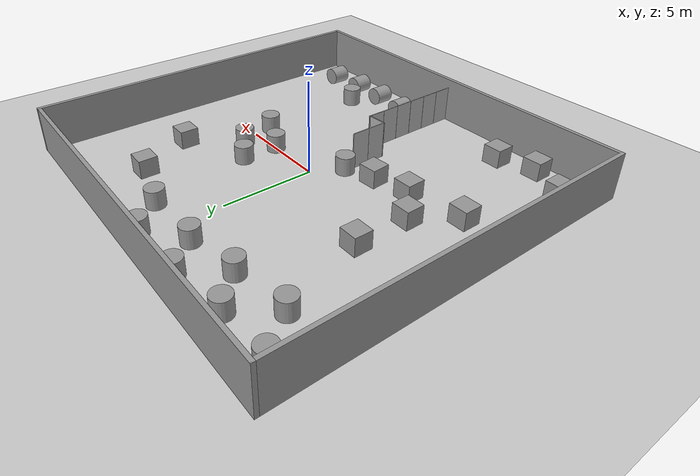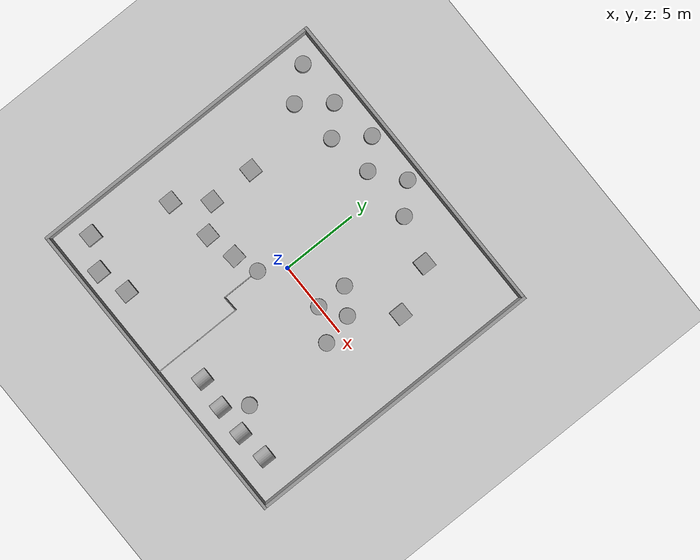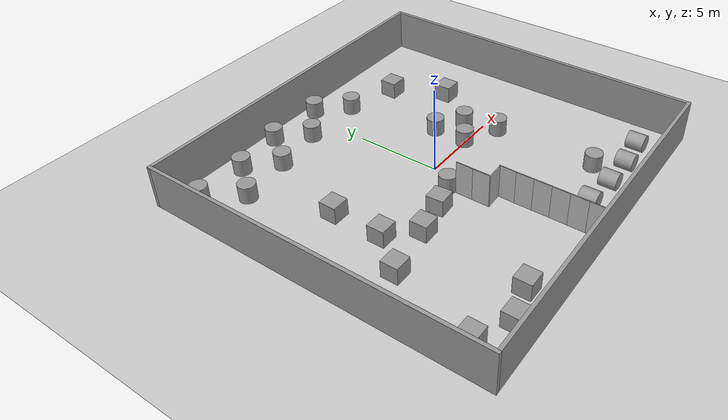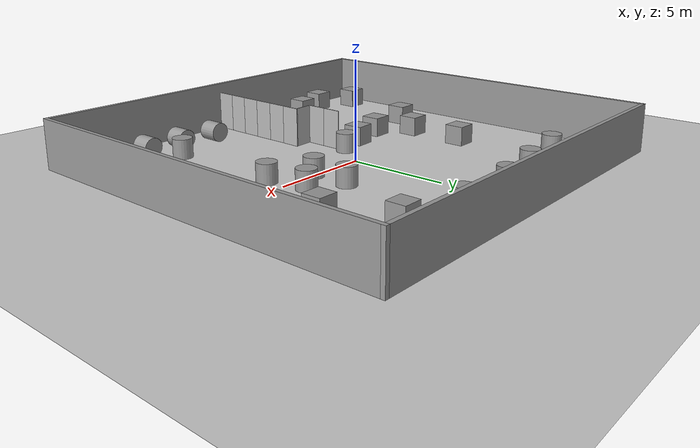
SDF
<sdf version="1.4">
 <world name="default">
  <model name="ground_plane">
   <static>1</static>
   <link name="link">
    <collision name="collision">
     <geometry><plane><normal>0 0 1</normal><size>100 100</size></plane></geometry>
     <surface><friction><ode><mu>100</mu><mu2>50</mu2></ode></friction></surface>
    </collision>
    <visual name="visual">
     <cast_shadows>0</cast_shadows>
     <geometry><plane><normal>0 0 1</normal><size>100 100</size></plane></geometry>
     <material>
      <script><uri>file://media/materials/scripts/gazebo.material</uri><name>Gazebo/Grey</name></script>
     </material>
    </visual>
    <velocity_decay><linear>0</linear><angular>0</angular></velocity_decay>
   </link>
  </model>
  <light name="sun" type="directional">
   <pose>0 0 10 0 -0 0</pose>
   <diffuse>0.8 0.8 0.8 1</diffuse>
   <specular>0.2 0.2 0.2 1</specular>
   <attenuation>
    <range>1000</range>
    <constant>0.9</constant>
    <linear>0.01</linear>
    <quadratic>0.001</quadratic>
   </attenuation>
   <direction>-0.5 0.1 -0.9</direction>
  </light>
  <model name="BuildingDefaultName3">
   <link name="Wall_12">
    <collision name="Wall_12_Collision">
     <geometry><box><size>20.7566 0.2 2.5</size></box></geometry>
     <pose>0 0 1.25 0 -0 0</pose>
    </collision>
    <visual name="Wall_12_Visual">
     <pose>0 0 1.25 0 -0 0</pose>
     <geometry><box><size>20.7566 0.2 2.5</size></box></geometry>
     <material>
      <script><uri>file://media/materials/scripts/gazebo.material</uri><name>Gazebo/Grey</name></script>
     </material>
    </visual>
    <velocity_decay><linear>0</linear><angular>0</angular></velocity_decay>
    <pose>0.012585 -10.0653 0 0 -0 0</pose>
   </link>
   <link name="Wall_13">
    <collision name="Wall_13_Collision">
     <geometry><box><size>20.1448 0.2 2.5</size></box></geometry>
     <pose>0 0 1.25 0 -0 0</pose>
    </collision>
    <visual name="Wall_13_Visual">
     <pose>0 0 1.25 0 -0 0</pose>
     <geometry><box><size>20.1448 0.2 2.5</size></box></geometry>
     <material>
      <script><uri>file://media/materials/scripts/gazebo.material</uri><name>Gazebo/Grey</name></script>
     </material>
    </visual>
    <velocity_decay><linear>0</linear><angular>0</angular></velocity_decay>
    <pose>10.2909 -0.092882 0 0 -0 1.5708</pose>
   </link>
   <link name="Wall_14">
    <collision name="Wall_14_Collision">
     <geometry><box><size>20.9402 0.2 2.5</size></box></geometry>
     <pose>0 0 1.25 0 -0 0</pose>
    </collision>
    <visual name="Wall_14_Visual">
     <pose>0 0 1.25 0 -0 0</pose>
     <geometry><box><size>20.9402 0.2 2.5</size></box></geometry>
     <material>
      <script><uri>file://media/materials/scripts/gazebo.material</uri><name>Gazebo/Grey</name></script>
     </material>
    </visual>
    <velocity_decay><linear>0</linear><angular>0</angular></velocity_decay>
    <pose>-0.079185 9.87953 0 0 -0 3.14159</pose>
   </link>
   <link name="Wall_15">
    <collision name="Wall_15_Collision">
     <geometry><box><size>20.1448 0.2 2.5</size></box></geometry>
     <pose>0 0 1.25 0 -0 0</pose>
    </collision>
    <visual name="Wall_15_Visual">
     <pose>0 0 1.25 0 -0 0</pose>
     <geometry><box><size>20.1448 0.2 2.5</size></box></geometry>
     <material>
      <script><uri>file://media/materials/scripts/gazebo.material</uri><name>Gazebo/Grey</name></script>
     </material>
    </visual>
    <velocity_decay><linear>0</linear><angular>0</angular></velocity_decay>
    <pose>-10.4493 -0.092882 0 0 0 -1.5708</pose>
   </link>
   <static>1</static>
  </model>
  <physics type="ode">
   <max_step_size>0.001</max_step_size>
   <real_time_factor>1</real_time_factor>
   <real_time_update_rate>1000</real_time_update_rate>
   <gravity>0 0 -9.8</gravity>
  </physics>
  <scene><ambient>0.4 0.4 0.4 1</ambient><background>0.7 0.7 0.7 1</background><shadows>1</shadows></scene>
  <spherical_coordinates>
   <surface_model>EARTH_WGS84</surface_model>
   <latitude_deg>0</latitude_deg>
   <longitude_deg>0</longitude_deg>
   <elevation>0</elevation>
   <heading_deg>0</heading_deg>
  </spherical_coordinates>
  <model name="unit_cylinder_1">
   <pose>-9 8.47512 0.499999 0 -0 0</pose>
   <link name="link">
    <inertial>
     <mass>1</mass>
     <inertia><ixx>1</ixx><ixy>0</ixy><ixz>0</ixz><iyy>1</iyy><iyz>0</iyz><izz>1</izz></inertia>
    </inertial>
    <collision name="collision">
     <geometry><cylinder><radius>0.5</radius><length>1</length></cylinder></geometry>
    </collision>
    <visual name="visual">
     <geometry><cylinder><radius>0.5</radius><length>1</length></cylinder></geometry>
     <material>
      <script><uri>file://media/materials/scripts/gazebo.material</uri><name>Gazebo/Grey</name></script>
     </material>
    </visual>
    <velocity_decay><linear>0</linear><angular>0</angular></velocity_decay>
   </link>
   <static>0</static>
  </model>
  <model name="unit_cylinder_2">
   <pose>-6 8.49074 0.499992 0 -0 0</pose>
   <link name="link">
    <inertial>
     <mass>1</mass>
     <inertia><ixx>1</ixx><ixy>0</ixy><ixz>0</ixz><iyy>1</iyy><iyz>0</iyz><izz>1</izz></inertia>
    </inertial>
    <collision name="collision">
     <geometry><cylinder><radius>0.5</radius><length>1</length></cylinder></geometry>
    </collision>
    <visual name="visual">
     <geometry><cylinder><radius>0.5</radius><length>1</length></cylinder></geometry>
     <material>
      <script><uri>file://media/materials/scripts/gazebo.material</uri><name>Gazebo/Grey</name></script>
     </material>
    </visual>
    <velocity_decay><linear>0</linear><angular>0</angular></velocity_decay>
   </link>
   <static>0</static>
  </model>
  <model name="unit_cylinder_3">
   <pose>-7.46054 6.56411 0.499999 0 -0 0</pose>
   <link name="link">
    <inertial>
     <mass>1</mass>
     <inertia><ixx>1</ixx><ixy>0</ixy><ixz>0</ixz><iyy>1</iyy><iyz>0</iyz><izz>1</izz></inertia>
    </inertial>
    <collision name="collision">
     <geometry><cylinder><radius>0.5</radius><length>1</length></cylinder></geometry>
    </collision>
    <visual name="visual">
     <geometry><cylinder><radius>0.5</radius><length>1</length></cylinder></geometry>
     <material>
      <script><uri>file://media/materials/scripts/gazebo.material</uri><name>Gazebo/Grey</name></script>
     </material>
    </visual>
    <velocity_decay><linear>0</linear><angular>0</angular></velocity_decay>
   </link>
   <static>0</static>
  </model>
  <model name="unit_cylinder_4">
   <pose>-4.42348 7 0.499995 0 -0 0</pose>
   <link name="link">
    <inertial>
     <mass>1</mass>
     <inertia><ixx>1</ixx><ixy>0</ixy><ixz>0</ixz><iyy>1</iyy><iyz>0</iyz><izz>1</izz></inertia>
    </inertial>
    <collision name="collision">
     <geometry><cylinder><radius>0.5</radius><length>1</length></cylinder></geometry>
    </collision>
    <visual name="visual">
     <geometry><cylinder><radius>0.5</radius><length>1</length></cylinder></geometry>
     <material>
      <script><uri>file://media/materials/scripts/gazebo.material</uri><name>Gazebo/Grey</name></script>
     </material>
    </visual>
    <velocity_decay><linear>0</linear><angular>0</angular></velocity_decay>
   </link>
   <static>0</static>
  </model>
  <model name="unit_cylinder_5">
   <pose>-3 9 0.499994 -1e-06 1e-06 0</pose>
   <link name="link">
    <inertial>
     <mass>1</mass>
     <inertia><ixx>1</ixx><ixy>0</ixy><ixz>0</ixz><iyy>1</iyy><iyz>0</iyz><izz>1</izz></inertia>
    </inertial>
    <collision name="collision">
     <geometry><cylinder><radius>0.5</radius><length>1</length></cylinder></geometry>
    </collision>
    <visual name="visual">
     <geometry><cylinder><radius>0.5</radius><length>1</length></cylinder></geometry>
     <material>
      <script><uri>file://media/materials/scripts/gazebo.material</uri><name>Gazebo/Grey</name></script>
     </material>
    </visual>
    <velocity_decay><linear>0</linear><angular>0</angular></velocity_decay>
   </link>
   <static>0</static>
  </model>
  <model name="unit_cylinder_6">
   <pose>-1.50811 7.45695 0.499995 0 -0 0</pose>
   <link name="link">
    <inertial>
     <mass>1</mass>
     <inertia><ixx>1</ixx><ixy>0</ixy><ixz>0</ixz><iyy>1</iyy><iyz>0</iyz><izz>1</izz></inertia>
    </inertial>
    <collision name="collision">
     <geometry><cylinder><radius>0.5</radius><length>1</length></cylinder></geometry>
    </collision>
    <visual name="visual">
     <geometry><cylinder><radius>0.5</radius><length>1</length></cylinder></geometry>
     <material>
      <script><uri>file://media/materials/scripts/gazebo.material</uri><name>Gazebo/Grey</name></script>
     </material>
    </visual>
    <velocity_decay><linear>0</linear><angular>0</angular></velocity_decay>
   </link>
   <static>0</static>
  </model>
  <model name="unit_cylinder_7">
   <pose>0.422256 9 0.499994 -1e-06 1e-06 0</pose>
   <link name="link">
    <inertial>
     <mass>1</mass>
     <inertia><ixx>1</ixx><ixy>0</ixy><ixz>0</ixz><iyy>1</iyy><iyz>0</iyz><izz>1</izz></inertia>
    </inertial>
    <collision name="collision">
     <geometry><cylinder><radius>0.5</radius><length>1</length></cylinder></geometry>
    </collision>
    <visual name="visual">
     <geometry><cylinder><radius>0.5</radius><length>1</length></cylinder></geometry>
     <material>
      <script><uri>file://media/materials/scripts/gazebo.material</uri><name>Gazebo/Grey</name></script>
     </material>
    </visual>
    <velocity_decay><linear>0</linear><angular>0</angular></velocity_decay>
   </link>
   <static>0</static>
  </model>
  <model name="unit_cylinder_8">
   <pose>2 7.45092 0.499995 0 -0 0</pose>
   <link name="link">
    <inertial>
     <mass>1</mass>
     <inertia><ixx>1</ixx><ixy>0</ixy><ixz>0</ixz><iyy>1</iyy><iyz>0</iyz><izz>1</izz></inertia>
    </inertial>
    <collision name="collision">
     <geometry><cylinder><radius>0.5</radius><length>1</length></cylinder></geometry>
    </collision>
    <visual name="visual">
     <geometry><cylinder><radius>0.5</radius><length>1</length></cylinder></geometry>
     <material>
      <script><uri>file://media/materials/scripts/gazebo.material</uri><name>Gazebo/Grey</name></script>
     </material>
    </visual>
    <velocity_decay><linear>0</linear><angular>0</angular></velocity_decay>
   </link>
   <static>0</static>
  </model>
  <model name="unit_cylinder_9">
   <pose>7.986 -8.26786 0.5 -1.5708 0 0</pose>
   <link name="link">
    <inertial>
     <mass>1</mass>
     <inertia><ixx>1</ixx><ixy>0</ixy><ixz>0</ixz><iyy>1</iyy><iyz>0</iyz><izz>1</izz></inertia>
    </inertial>
    <collision name="collision">
     <geometry><cylinder><radius>0.5</radius><length>1</length></cylinder></geometry>
    </collision>
    <visual name="visual">
     <geometry><cylinder><radius>0.5</radius><length>1</length></cylinder></geometry>
     <material>
      <script><uri>file://media/materials/scripts/gazebo.material</uri><name>Gazebo/Grey</name></script>
     </material>
    </visual>
    <velocity_decay><linear>0</linear><angular>0</angular></velocity_decay>
   </link>
   <static>0</static>
  </model>
  <model name="unit_cylinder_10">
   <pose>5.99948 -8.47849 0.5 -1.5708 -0.000971 0.000224</pose>
   <link name="link">
    <inertial>
     <mass>1</mass>
     <inertia><ixx>1</ixx><ixy>0</ixy><ixz>0</ixz><iyy>1</iyy><iyz>0</iyz><izz>1</izz></inertia>
    </inertial>
    <collision name="collision">
     <geometry><cylinder><radius>0.5</radius><length>1</length></cylinder></geometry>
    </collision>
    <visual name="visual">
     <geometry><cylinder><radius>0.5</radius><length>1</length></cylinder></geometry>
     <material>
      <script><uri>file://media/materials/scripts/gazebo.material</uri><name>Gazebo/Grey</name></script>
     </material>
    </visual>
    <velocity_decay><linear>0</linear><angular>0</angular></velocity_decay>
   </link>
   <static>0</static>
  </model>
  <model name="unit_cylinder_11">
   <pose>4 -8.43207 0.5 -1.5708 0 0</pose>
   <link name="link">
    <inertial>
     <mass>1</mass>
     <inertia><ixx>1</ixx><ixy>0</ixy><ixz>0</ixz><iyy>1</iyy><iyz>0</iyz><izz>1</izz></inertia>
    </inertial>
    <collision name="collision">
     <geometry><cylinder><radius>0.5</radius><length>1</length></cylinder></geometry>
    </collision>
    <visual name="visual">
     <geometry><cylinder><radius>0.5</radius><length>1</length></cylinder></geometry>
     <material>
      <script><uri>file://media/materials/scripts/gazebo.material</uri><name>Gazebo/Grey</name></script>
     </material>
    </visual>
    <velocity_decay><linear>0</linear><angular>0</angular></velocity_decay>
   </link>
   <static>0</static>
  </model>
  <model name="unit_cylinder_12">
   <pose>2 -8.21356 0.5 -1.5708 0 0</pose>
   <link name="link">
    <inertial>
     <mass>1</mass>
     <inertia><ixx>1</ixx><ixy>0</ixy><ixz>0</ixz><iyy>1</iyy><iyz>0</iyz><izz>1</izz></inertia>
    </inertial>
    <collision name="collision">
     <geometry><cylinder><radius>0.5</radius><length>1</length></cylinder></geometry>
    </collision>
    <visual name="visual">
     <geometry><cylinder><radius>0.5</radius><length>1</length></cylinder></geometry>
     <material>
      <script><uri>file://media/materials/scripts/gazebo.material</uri><name>Gazebo/Grey</name></script>
     </material>
    </visual>
    <velocity_decay><linear>0</linear><angular>0</angular></velocity_decay>
   </link>
   <static>0</static>
  </model>
  <model name="unit_cylinder_13">
   <pose>5 -7 0.499995 0 -0 0</pose>
   <link name="link">
    <inertial>
     <mass>1</mass>
     <inertia><ixx>1</ixx><ixy>0</ixy><ixz>0</ixz><iyy>1</iyy><iyz>0</iyz><izz>1</izz></inertia>
    </inertial>
    <collision name="collision">
     <geometry><cylinder><radius>0.5</radius><length>1</length></cylinder></geometry>
    </collision>
    <visual name="visual">
     <geometry><cylinder><radius>0.5</radius><length>1</length></cylinder></geometry>
     <material>
      <script><uri>file://media/materials/scripts/gazebo.material</uri><name>Gazebo/Grey</name></script>
     </material>
    </visual>
    <velocity_decay><linear>0</linear><angular>0</angular></velocity_decay>
   </link>
   <static>0</static>
  </model>
  <model name="unit_box_1">
   <pose>-7 -9 0.5 0 -0 0</pose>
   <link name="link">
    <inertial>
     <mass>1</mass>
     <inertia><ixx>1</ixx><ixy>0</ixy><ixz>0</ixz><iyy>1</iyy><iyz>0</iyz><izz>1</izz></inertia>
    </inertial>
    <collision name="collision"><geometry><box><size>1 1 1</size></box></geometry></collision>
    <visual name="visual">
     <geometry><box><size>1 1 1</size></box></geometry>
     <material>
      <script><uri>file://media/materials/scripts/gazebo.material</uri><name>Gazebo/Grey</name></script>
     </material>
    </visual>
    <velocity_decay><linear>0</linear><angular>0</angular></velocity_decay>
   </link>
   <static>0</static>
  </model>
  <model name="unit_box_2">
   <pose>-9 -8 0.5 0 -0 0</pose>
   <link name="link">
    <inertial>
     <mass>1</mass>
     <inertia><ixx>1</ixx><ixy>0</ixy><ixz>0</ixz><iyy>1</iyy><iyz>0</iyz><izz>1</izz></inertia>
    </inertial>
    <collision name="collision"><geometry><box><size>1 1 1</size></box></geometry></collision>
    <visual name="visual">
     <geometry><box><size>1 1 1</size></box></geometry>
     <material>
      <script><uri>file://media/materials/scripts/gazebo.material</uri><name>Gazebo/Grey</name></script>
     </material>
    </visual>
    <velocity_decay><linear>0</linear><angular>0</angular></velocity_decay>
   </link>
   <static>0</static>
  </model>
  <model name="unit_box_3">
   <pose>-5 -8.44101 0.5 0 -0 0</pose>
   <link name="link">
    <inertial>
     <mass>1</mass>
     <inertia><ixx>1</ixx><ixy>0</ixy><ixz>0</ixz><iyy>1</iyy><iyz>0</iyz><izz>1</izz></inertia>
    </inertial>
    <collision name="collision"><geometry><box><size>1 1 1</size></box></geometry></collision>
    <visual name="visual">
     <geometry><box><size>1 1 1</size></box></geometry>
     <material>
      <script><uri>file://media/materials/scripts/gazebo.material</uri><name>Gazebo/Grey</name></script>
     </material>
    </visual>
    <velocity_decay><linear>0</linear><angular>0</angular></velocity_decay>
   </link>
   <static>0</static>
  </model>
  <model name="unit_cylinder_1_0">
   <pose>3 1e-06 0.499992 -1e-06 1e-06 0</pose>
   <link name="link">
    <inertial>
     <mass>1</mass>
     <inertia><ixx>1</ixx><ixy>0</ixy><ixz>0</ixz><iyy>1</iyy><iyz>0</iyz><izz>1</izz></inertia>
    </inertial>
    <collision name="collision">
     <geometry><cylinder><radius>0.5</radius><length>1</length></cylinder></geometry>
    </collision>
    <visual name="visual">
     <geometry><cylinder><radius>0.5</radius><length>1</length></cylinder></geometry>
     <material>
      <script><uri>file://media/materials/scripts/gazebo.material</uri><name>Gazebo/Grey</name></script>
     </material>
    </visual>
    <velocity_decay><linear>0</linear><angular>0</angular></velocity_decay>
   </link>
   <static>0</static>
  </model>
  <model name="unit_cylinder_2_0">
   <pose>3 2 0.499998 1e-06 -1e-06 0</pose>
   <link name="link">
    <inertial>
     <mass>1</mass>
     <inertia><ixx>1</ixx><ixy>0</ixy><ixz>0</ixz><iyy>1</iyy><iyz>0</iyz><izz>1</izz></inertia>
    </inertial>
    <collision name="collision">
     <geometry><cylinder><radius>0.5</radius><length>1</length></cylinder></geometry>
    </collision>
    <visual name="visual">
     <geometry><cylinder><radius>0.5</radius><length>1</length></cylinder></geometry>
     <material>
      <script><uri>file://media/materials/scripts/gazebo.material</uri><name>Gazebo/Grey</name></script>
     </material>
    </visual>
    <velocity_decay><linear>0</linear><angular>0</angular></velocity_decay>
   </link>
   <static>0</static>
  </model>
  <model name="unit_cylinder_3_0">
   <pose>4.52222 1 0.499992 -1e-06 1e-06 0</pose>
   <link name="link">
    <inertial>
     <mass>1</mass>
     <inertia><ixx>1</ixx><ixy>0</ixy><ixz>0</ixz><iyy>1</iyy><iyz>0</iyz><izz>1</izz></inertia>
    </inertial>
    <collision name="collision">
     <geometry><cylinder><radius>0.5</radius><length>1</length></cylinder></geometry>
    </collision>
    <visual name="visual">
     <geometry><cylinder><radius>0.5</radius><length>1</length></cylinder></geometry>
     <material>
      <script><uri>file://media/materials/scripts/gazebo.material</uri><name>Gazebo/Grey</name></script>
     </material>
    </visual>
    <velocity_decay><linear>0</linear><angular>0</angular></velocity_decay>
   </link>
   <static>0</static>
  </model>
  <model name="unit_cylinder_4_0">
   <pose>5 -1 0.499998 1e-06 -1e-06 0</pose>
   <link name="link">
    <inertial>
     <mass>1</mass>
     <inertia><ixx>1</ixx><ixy>0</ixy><ixz>0</ixz><iyy>1</iyy><iyz>0</iyz><izz>1</izz></inertia>
    </inertial>
    <collision name="collision">
     <geometry><cylinder><radius>0.5</radius><length>1</length></cylinder></geometry>
    </collision>
    <visual name="visual">
     <geometry><cylinder><radius>0.5</radius><length>1</length></cylinder></geometry>
     <material>
      <script><uri>file://media/materials/scripts/gazebo.material</uri><name>Gazebo/Grey</name></script>
     </material>
    </visual>
    <velocity_decay><linear>0</linear><angular>0</angular></velocity_decay>
   </link>
   <static>0</static>
  </model>
  <model name="unit_box_1_0">
   <pose>-4.5664 -2.48025 0.5 0 -0 0.019553</pose>
   <link name="link">
    <inertial>
     <mass>1</mass>
     <inertia><ixx>1</ixx><ixy>0</ixy><ixz>0</ixz><iyy>1</iyy><iyz>0</iyz><izz>1</izz></inertia>
    </inertial>
    <collision name="collision"><geometry><box><size>1 0.951099 1</size></box></geometry></collision>
    <visual name="visual">
     <geometry><box><size>1 1 1</size></box></geometry>
     <material>
      <script><uri>file://media/materials/scripts/gazebo.material</uri><name>Gazebo/Grey</name></script>
     </material>
    </visual>
    <velocity_decay><linear>0</linear><angular>0</angular></velocity_decay>
   </link>
   <static>0</static>
  </model>
  <model name="unit_box_2_0">
   <pose>-6 -1 0.5 0 -0 0</pose>
   <link name="link">
    <inertial>
     <mass>1</mass>
     <inertia><ixx>1</ixx><ixy>0</ixy><ixz>0</ixz><iyy>1</iyy><iyz>0</iyz><izz>1</izz></inertia>
    </inertial>
    <collision name="collision"><geometry><box><size>1 1 1</size></box></geometry></collision>
    <visual name="visual">
     <geometry><box><size>1 1 1</size></box></geometry>
     <material>
      <script><uri>file://media/materials/scripts/gazebo.material</uri><name>Gazebo/Grey</name></script>
     </material>
    </visual>
    <velocity_decay><linear>0</linear><angular>0</angular></velocity_decay>
   </link>
   <static>0</static>
  </model>
  <model name="unit_box_3_0">
   <pose>-7.54795 -3 0.5 0 -0 0</pose>
   <link name="link">
    <inertial>
     <mass>1</mass>
     <inertia><ixx>1</ixx><ixy>0</ixy><ixz>0</ixz><iyy>1</iyy><iyz>0</iyz><izz>1</izz></inertia>
    </inertial>
    <collision name="collision"><geometry><box><size>1 1 1</size></box></geometry></collision>
    <visual name="visual">
     <geometry><box><size>1 1 1</size></box></geometry>
     <material>
      <script><uri>file://media/materials/scripts/gazebo.material</uri><name>Gazebo/Grey</name></script>
     </material>
    </visual>
    <velocity_decay><linear>0</linear><angular>0</angular></velocity_decay>
   </link>
   <static>0</static>
  </model>
  <model name="unit_box_4">
   <pose>4.99986 6.60389 0.499863 4.4e-05 -1e-06 0.00027</pose>
   <link name="link">
    <inertial>
     <mass>1</mass>
     <inertia><ixx>1</ixx><ixy>0</ixy><ixz>0</ixz><iyy>1</iyy><iyz>0</iyz><izz>1</izz></inertia>
    </inertial>
    <collision name="collision"><geometry><box><size>0.278504 6.19525 1</size></box></geometry></collision>
    <visual name="visual">
     <geometry><box><size>1 1 1</size></box></geometry>
     <material>
      <script><uri>file://media/materials/scripts/gazebo.material</uri><name>Gazebo/Grey</name></script>
     </material>
    </visual>
    <velocity_decay><linear>0</linear><angular>0</angular></velocity_decay>
   </link>
   <static>0</static>
  </model>
  <model name="unit_box_5">
   <pose>6.47957 3.57314 0.5 0 -0 0</pose>
   <link name="link">
    <inertial>
     <mass>1</mass>
     <inertia><ixx>1</ixx><ixy>0</ixy><ixz>0</ixz><iyy>1</iyy><iyz>0</iyz><izz>1</izz></inertia>
    </inertial>
    <collision name="collision"><geometry><box><size>1 1 1</size></box></geometry></collision>
    <visual name="visual">
     <geometry><box><size>1 1 1</size></box></geometry>
     <material>
      <script><uri>file://media/materials/scripts/gazebo.material</uri><name>Gazebo/Grey</name></script>
     </material>
    </visual>
    <velocity_decay><linear>0</linear><angular>0</angular></velocity_decay>
   </link>
   <static>0</static>
  </model>
  <model name="table">
   <link name="wallWithREEMphoto_body">
    <inertial>
     <mass>4</mass>
     <inertia><ixx>1</ixx><ixy>0</ixy><ixz>0</ixz><iyy>1</iyy><iyz>0</iyz><izz>1</izz></inertia>
    </inertial>
    <collision name="collision"><geometry><box><size>0.05 1 2</size></box></geometry></collision>
    <visual name="visual">
     <geometry><box><size>0.05 1 2</size></box></geometry>
     <material>
      <script>
       <uri>model://wall_with_reem_photo/material/scripts</uri>
       <uri>model://wall_with_reem_photo/material/textures</uri>
       <name>Custom/REEM_photo0</name>
      </script>
     </material>
    </visual>
    <velocity_decay><linear>0</linear><angular>0</angular></velocity_decay>
   </link>
   <pose>-0.002417 -9.46521 1 0 -6e-06 0.0027</pose>
   <static>0</static>
  </model>
  <model name="table_0">
   <link name="wallWithREEMphoto_body">
    <inertial>
     <mass>4</mass>
     <inertia><ixx>1</ixx><ixy>0</ixy><ixz>0</ixz><iyy>1</iyy><iyz>0</iyz><izz>1</izz></inertia>
    </inertial>
    <collision name="collision"><geometry><box><size>0.05 1 2</size></box></geometry></collision>
    <visual name="visual">
     <geometry><box><size>0.05 1 2</size></box></geometry>
     <material>
      <script>
       <uri>model://wall_with_reem_photo/material/scripts</uri>
       <uri>model://wall_with_reem_photo/material/textures</uri>
       <name>Custom/REEM_photo0</name>
      </script>
     </material>
    </visual>
    <velocity_decay><linear>0</linear><angular>0</angular></velocity_decay>
   </link>
   <pose>-0.002219 -8.46517 0.999998 4e-06 3e-06 0.00296</pose>
   <static>0</static>
  </model>
  <model name="table_1">
   <link name="wallWithREEMphoto_body">
    <inertial>
     <mass>4</mass>
     <inertia><ixx>1</ixx><ixy>0</ixy><ixz>0</ixz><iyy>1</iyy><iyz>0</iyz><izz>1</izz></inertia>
    </inertial>
    <collision name="collision"><geometry><box><size>0.05 1 2</size></box></geometry></collision>
    <visual name="visual">
     <geometry><box><size>0.05 1 2</size></box></geometry>
     <material>
      <script>
       <uri>model://wall_with_reem_photo/material/scripts</uri>
       <uri>model://wall_with_reem_photo/material/textures</uri>
       <name>Custom/REEM_photo0</name>
      </script>
     </material>
    </visual>
    <velocity_decay><linear>0</linear><angular>0</angular></velocity_decay>
   </link>
   <pose>0.00021 -7.46514 1 1e-06 3e-06 0.003251</pose>
   <static>0</static>
  </model>
  <model name="table_2">
   <link name="wallWithREEMphoto_body">
    <inertial>
     <mass>4</mass>
     <inertia><ixx>1</ixx><ixy>0</ixy><ixz>0</ixz><iyy>1</iyy><iyz>0</iyz><izz>1</izz></inertia>
    </inertial>
    <collision name="collision"><geometry><box><size>0.05 1 2</size></box></geometry></collision>
    <visual name="visual">
     <geometry><box><size>0.05 1 2</size></box></geometry>
     <material>
      <script>
       <uri>model://wall_with_reem_photo/material/scripts</uri>
       <uri>model://wall_with_reem_photo/material/textures</uri>
       <name>Custom/REEM_photo0</name>
      </script>
     </material>
    </visual>
    <velocity_decay><linear>0</linear><angular>0</angular></velocity_decay>
   </link>
   <pose>0.002025 -6.465 1 2e-06 -1e-06 0.00797</pose>
   <static>0</static>
  </model>
  <model name="table_3">
   <link name="wallWithREEMphoto_body">
    <inertial>
     <mass>4</mass>
     <inertia><ixx>1</ixx><ixy>0</ixy><ixz>0</ixz><iyy>1</iyy><iyz>0</iyz><izz>1</izz></inertia>
    </inertial>
    <collision name="collision"><geometry><box><size>0.05 1 2</size></box></geometry></collision>
    <visual name="visual">
     <geometry><box><size>0.05 1 2</size></box></geometry>
     <material>
      <script>
       <uri>model://wall_with_reem_photo/material/scripts</uri>
       <uri>model://wall_with_reem_photo/material/textures</uri>
       <name>Custom/REEM_photo0</name>
      </script>
     </material>
    </visual>
    <velocity_decay><linear>0</linear><angular>0</angular></velocity_decay>
   </link>
   <pose>-0.002168 -5.46499 0.999989 -3e-06 -0 0.007972</pose>
   <static>0</static>
  </model>
  <model name="table_4">
   <link name="wallWithREEMphoto_body">
    <inertial>
     <mass>4</mass>
     <inertia><ixx>1</ixx><ixy>0</ixy><ixz>0</ixz><iyy>1</iyy><iyz>0</iyz><izz>1</izz></inertia>
    </inertial>
    <collision name="collision"><geometry><box><size>0.05 1 2</size></box></geometry></collision>
    <visual name="visual">
     <geometry><box><size>0.05 1 2</size></box></geometry>
     <material>
      <script>
       <uri>model://wall_with_reem_photo/material/scripts</uri>
       <uri>model://wall_with_reem_photo/material/textures</uri>
       <name>Custom/REEM_photo0</name>
      </script>
     </material>
    </visual>
    <velocity_decay><linear>0</linear><angular>0</angular></velocity_decay>
   </link>
   <pose>0.004115 -4.46455 0.999998 -3e-06 2e-06 -0.008321</pose>
   <static>0</static>
  </model>
  <model name="table_5">
   <link name="wallWithREEMphoto_body">
    <inertial>
     <mass>4</mass>
     <inertia><ixx>1</ixx><ixy>0</ixy><ixz>0</ixz><iyy>1</iyy><iyz>0</iyz><izz>1</izz></inertia>
    </inertial>
    <collision name="collision"><geometry><box><size>0.05 1 2</size></box></geometry></collision>
    <visual name="visual">
     <geometry><box><size>0.05 1 2</size></box></geometry>
     <material>
      <script>
       <uri>model://wall_with_reem_photo/material/scripts</uri>
       <uri>model://wall_with_reem_photo/material/textures</uri>
       <name>Custom/REEM_photo0</name>
      </script>
     </material>
    </visual>
    <velocity_decay><linear>0</linear><angular>0</angular></velocity_decay>
   </link>
   <pose>-0.531897 -4.03194 1 -2e-06 -2e-06 1.61106</pose>
   <static>0</static>
  </model>
  <model name="table_6">
   <link name="wallWithREEMphoto_body">
    <inertial>
     <mass>4</mass>
     <inertia><ixx>1</ixx><ixy>0</ixy><ixz>0</ixz><iyy>1</iyy><iyz>0</iyz><izz>1</izz></inertia>
    </inertial>
    <collision name="collision"><geometry><box><size>0.05 1 2</size></box></geometry></collision>
    <visual name="visual">
     <geometry><box><size>0.05 1 2</size></box></geometry>
     <material>
      <script>
       <uri>model://wall_with_reem_photo/material/scripts</uri>
       <uri>model://wall_with_reem_photo/material/textures</uri>
       <name>Custom/REEM_photo0</name>
      </script>
     </material>
    </visual>
    <velocity_decay><linear>0</linear><angular>0</angular></velocity_decay>
   </link>
   <pose>-1.00287 -3.5242 0.999998 4e-06 -4e-06 0.001162</pose>
   <static>0</static>
  </model>
  <model name="table_7">
   <link name="wallWithREEMphoto_body">
    <inertial>
     <mass>4</mass>
     <inertia><ixx>1</ixx><ixy>0</ixy><ixz>0</ixz><iyy>1</iyy><iyz>0</iyz><izz>1</izz></inertia>
    </inertial>
    <collision name="collision"><geometry><box><size>0.05 1 2</size></box></geometry></collision>
    <visual name="visual">
     <geometry><box><size>0.05 1 2</size></box></geometry>
     <material>
      <script>
       <uri>model://wall_with_reem_photo/material/scripts</uri>
       <uri>model://wall_with_reem_photo/material/textures</uri>
       <name>Custom/REEM_photo0</name>
      </script>
     </material>
    </visual>
    <velocity_decay><linear>0</linear><angular>0</angular></velocity_decay>
   </link>
   <pose>-0.999033 -2.52414 0.999999 -2e-06 -1e-06 -0.000562</pose>
   <static>0</static>
  </model>
  <model name="unit_cylinder_1_1">
   <pose>-1.00002 -1.51634 0.499998 0 0 -1e-05</pose>
   <link name="link">
    <inertial>
     <mass>1</mass>
     <inertia><ixx>1</ixx><ixy>0</ixy><ixz>0</ixz><iyy>1</iyy><iyz>0</iyz><izz>1</izz></inertia>
    </inertial>
    <collision name="collision">
     <geometry><cylinder><radius>0.193037</radius><length>1</length></cylinder></geometry>
    </collision>
    <visual name="visual">
     <geometry><cylinder><radius>0.5</radius><length>1</length></cylinder></geometry>
     <material>
      <script><uri>file://media/materials/scripts/gazebo.material</uri><name>Gazebo/Grey</name></script>
     </material>
    </visual>
    <velocity_decay><linear>0</linear><angular>0</angular></velocity_decay>
   </link>
   <static>0</static>
  </model>
  <model name="unit_box_1_1">
   <pose>-2.5747 -2.04736 0.499995 2.64698e-23 3e-06 0.070739</pose>
   <link name="link">
    <inertial>
     <mass>1</mass>
     <inertia><ixx>1</ixx><ixy>0</ixy><ixz>0</ixz><iyy>1</iyy><iyz>0</iyz><izz>1</izz></inertia>
    </inertial>
    <collision name="collision"><geometry><box><size>2.994 0.182641 1</size></box></geometry></collision>
    <visual name="visual">
     <geometry><box><size>1 1 1</size></box></geometry>
     <material>
      <script><uri>file://media/materials/scripts/gazebo.material</uri><name>Gazebo/Grey</name></script>
     </material>
    </visual>
    <velocity_decay><linear>0</linear><angular>0</angular></velocity_decay>
   </link>
   <static>0</static>
  </model>
  <model name="unit_box_2_1">
   <pose>-6 2 0.5 0 -0 0</pose>
   <link name="link">
    <inertial>
     <mass>1</mass>
     <inertia><ixx>1</ixx><ixy>0</ixy><ixz>0</ixz><iyy>1</iyy><iyz>0</iyz><izz>1</izz></inertia>
    </inertial>
    <collision name="collision"><geometry><box><size>1 1 1</size></box></geometry></collision>
    <visual name="visual">
     <geometry><box><size>1 1 1</size></box></geometry>
     <material>
      <script><uri>file://media/materials/scripts/gazebo.material</uri><name>Gazebo/Grey</name></script>
     </material>
    </visual>
    <velocity_decay><linear>0</linear><angular>0</angular></velocity_decay>
   </link>
   <static>0</static>
  </model>
 </world>
</sdf>
